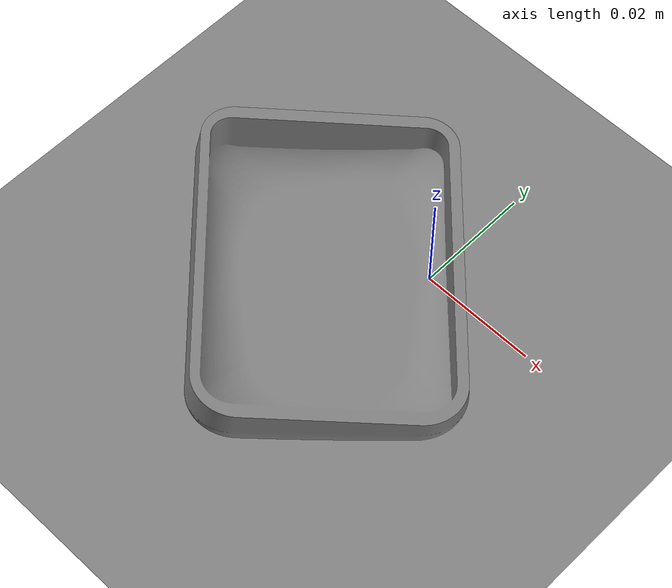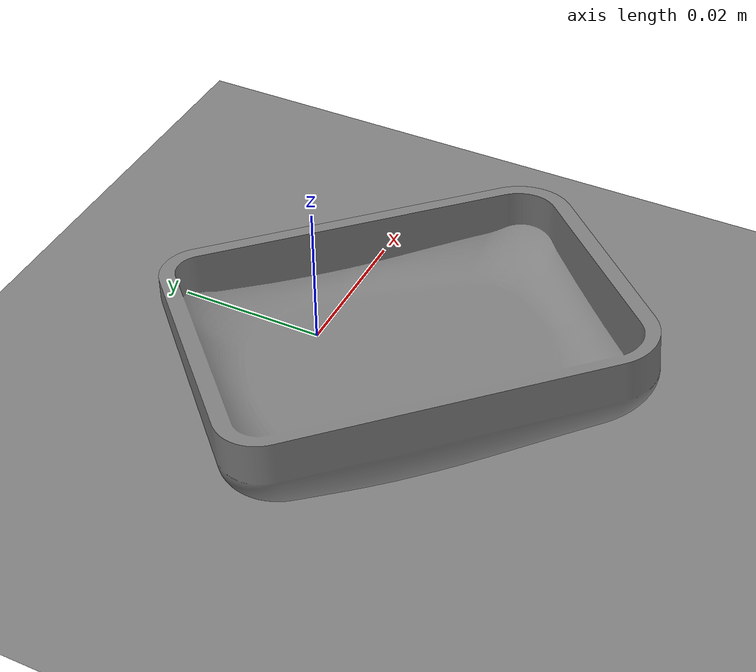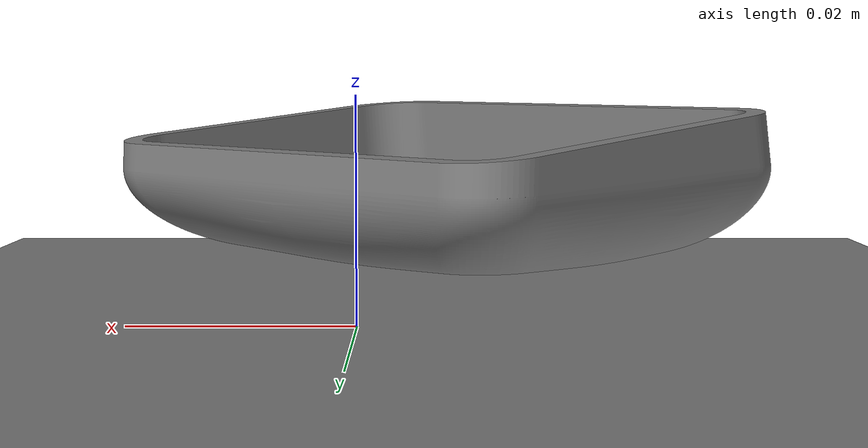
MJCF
<mujoco model="v65_v62_left_guided_ankle_drop"><compiler angle="radian" inertiafromgeom="false" /><option timestep=".005" gravity="0 0 -9.8100000000000005" integrator="Euler" solver="Newton" cone="pyramidal" iterations="100" tolerance="1e-08" ls_iterations="50" ls_tolerance="0.01" ccd_iterations="35" ccd_tolerance="1e-06" /><asset><mesh name="sole_mesh" file="/Users/kelly/Developer/microduck-rl-genesis/experiments/walking/upstream-audit-v56/sources/src/mjlab_microduck/robot/microduck/assets/sole_left.stl" /></asset><worldbody><geom name="floor" type="plane" size="0 0 .05" pos="0 0 0" contype="1" conaffinity="1" solref="0.02 1" solimp="0.90000000000000002 0.94999999999999996 0.001 0.5 2" friction="1 0.0050000000000000001 0.0001" priority="0" solmix="1" condim="3" margin="0" gap="0" /><body name="ankle_load" pos="0 0 0.02755042208021179"><joint name="vertical_guide" type="slide" axis="0 0 1" limited="false" damping="0" frictionloss="0" armature="0" /><inertial mass="0.030024599999999999" pos="-0.0077600237515572613 -0.016120084235854072 -0.012330683311099815" quat="0.68370854523230373 -0.28793628097683027 -0.62880823408017061 -0.23288522500695022" diaginertia="1.1162273349969178e-05 7.7431853606703589e-06 5.9033412893604532e-06" /><geom name="sole" type="mesh" mesh="sole_mesh" pos="-0.030519424467195296 -0.060309082672539364 0.011840349921183281" quat="0.9257661830390348 -0.016404052294012719 0.040435377964071491 0.37557004888379175" contype="1" conaffinity="1" solref="0.02 1" solimp="0.90000000000000002 0.94999999999999996 0.001 0.5 2" friction="1 0.0050000000000000001 0.0001" priority="0" solmix="1" condim="3" margin="0" gap="0" /></body></worldbody></mujoco>
